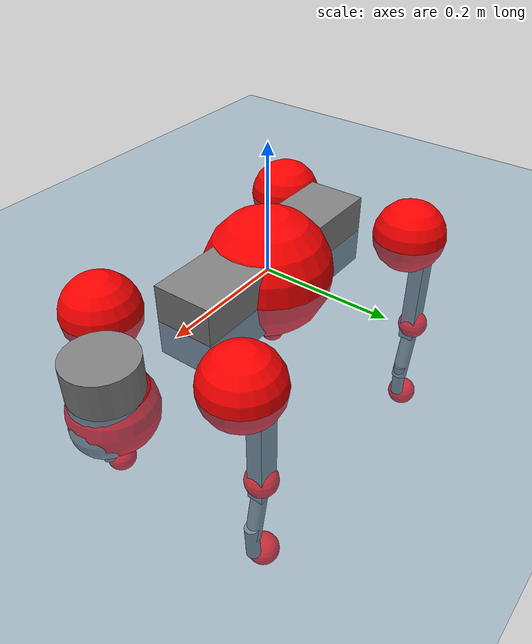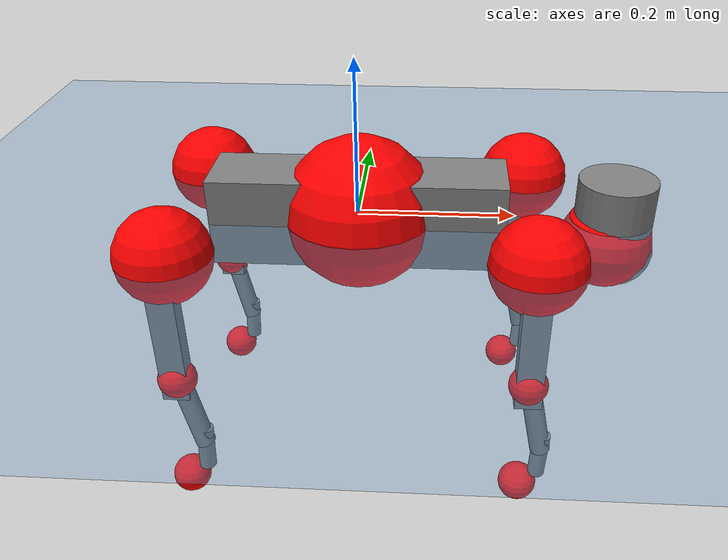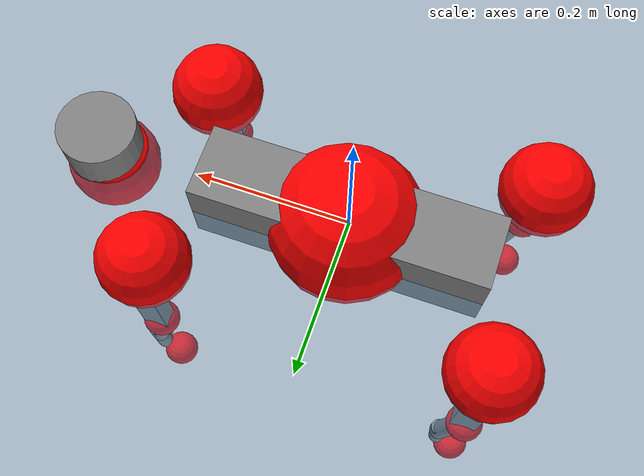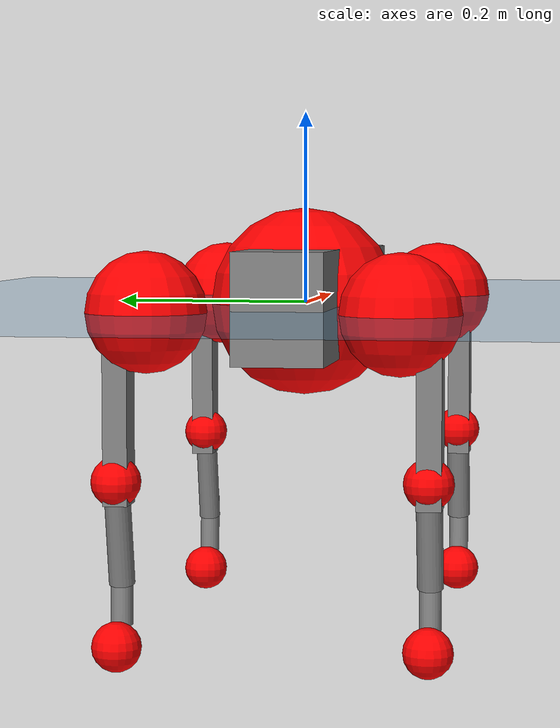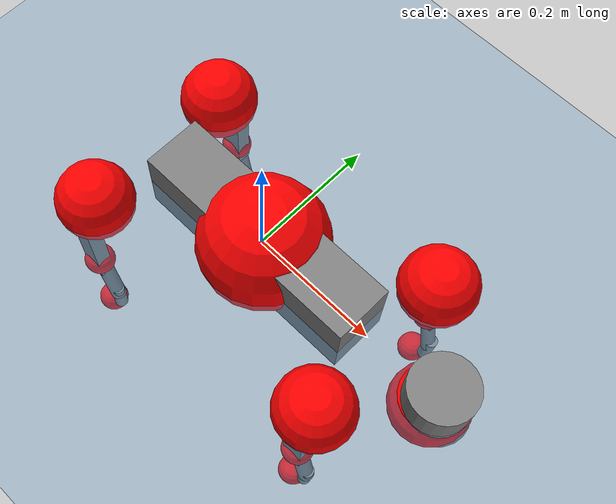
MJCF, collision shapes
<mujoco model="go2">
  <compiler angle="radian" assetdir="assets" balanceinertia="true" inertiafromgeom="false"/>

  <option timestep="0.005" density="1.2" viscosity="2e-05"/>

  <size nkey="1"/>

  <visual>
    <quality shadowsize="8192"/>
    <map shadowclip="0.5"/>
  </visual>

  <default>
    <default class="/">
      <geom contype="0" conaffinity="0" group="1" solref="-1000 -80"/>
      <site size="0.01 0.005 0.005" group="5"/>
      <general forcelimited="true" biastype="affine" gainprm="20" biasprm="0 -20 -0.5"/>
      <default class="go2">
        <joint armature="0.01" damping="0.01" frictionloss="0.2"/>
        <geom condim="1" margin="0.001"/>
        <default class="visual">
          <geom type="mesh" group="2"/>
        </default>
        <default class="collision">
          <geom group="3"/>
          <default class="foot">
            <geom size="0.022 0 0" condim="6" priority="1" friction="0.8 0.02 0.01" solimp="0.015 1 0.022"/>
          </default>
        </default>
        <default class="reward_collision_sphere">
          <geom group="5" rgba="1 0 0 1"/>
        </default>
      </default>
    </default>
  </default>

  <asset>
    <texture type="skybox" colorspace="auto" name="//unnamed_texture_0" builtin="gradient" rgb1="0.95 0.95 0.95" rgb2="0.95 0.95 0.95" width="100" height="600"/>
    <texture type="2d" colorspace="auto" name="texplane" builtin="checker" rgb1="0.345 0.575 0.748" rgb2="0.345 0.575 0.748" markrgb="1 1 1" width="512" height="512"/>
    <material name="MatPlane" class="/" texture="texplane" texuniform="true" texrepeat="2 2" specular="0.9"/>
    <material name="metal" class="/" rgba="0.9 0.95 0.95 1"/>
    <material name="black" class="/" rgba="0 0 0 1"/>
    <material name="white" class="/"/>
    <material name="gray" class="/" rgba="0.671705 0.692426 0.77427 1"/>
    <mesh name="base_0" class="/" file="base_0.obj"/>
    <mesh name="base_1" class="/" file="base_1.obj"/>
    <mesh name="base_2" class="/" file="base_2.obj"/>
    <mesh name="base_3" class="/" file="base_3.obj"/>
    <mesh name="base_4" class="/" file="base_4.obj"/>
    <mesh name="hip_0" class="/" file="hip_0.obj"/>
    <mesh name="hip_1" class="/" file="hip_1.obj"/>
    <mesh name="thigh_0" class="/" file="thigh_0.obj"/>
    <mesh name="thigh_1" class="/" file="thigh_1.obj"/>
    <mesh name="thigh_mirror_0" class="/" file="thigh_mirror_0.obj"/>
    <mesh name="thigh_mirror_1" class="/" file="thigh_mirror_1.obj"/>
    <mesh name="calf_0" class="/" file="calf_0.obj"/>
    <mesh name="calf_1" class="/" file="calf_1.obj"/>
    <mesh name="calf_mirror_0" class="/" file="calf_mirror_0.obj"/>
    <mesh name="calf_mirror_1" class="/" file="calf_mirror_1.obj"/>
    <mesh name="foot" class="/" file="foot.obj"/>
  </asset>

  <worldbody>
    <geom name="floor" class="/" size="100 100 0.125" type="plane" group="0" material="MatPlane"/>
    <light name="toplight_shadow" class="/" pos="0 0 5" dir="0.0990148 0.0990148 -0.990148" type="directional" ambient="0.04 0.04 0.04" diffuse="0.55 0.55 0.55" specular="0.12 0.12 0.12"/>
    <light name="toplight_fill" class="/" pos="0 0 5" dir="0.0990148 0.0990148 -0.990148" type="directional" castshadow="false" ambient="0.04 0.04 0.04" diffuse="0.3 0.3 0.3" specular="0.08 0.08 0.08"/>
    <body name="trunk" childclass="go2" pos="0.00223179 0.00168597 0.000942231" quat="1 7.497e-05 1.31517e-05 -1.85159e-06">
      <inertial pos="0.023908 0.000535089 -0.00410431" quat="-0.00888287 0.718233 -0.00843201 0.695695" mass="6.78145" diaginertia="0.212568 0.146092 0.0062969"/>
      <joint name="//unnamed_joint_0" type="free" armature="0" damping="0" frictionloss="0"/>
      <geom name="//unnamed_geom_1" class="visual" material="black" mesh="base_0"/>
      <geom name="//unnamed_geom_2" class="visual" material="black" mesh="base_1"/>
      <geom name="//unnamed_geom_3" class="visual" material="black" mesh="base_2"/>
      <geom name="//unnamed_geom_4" class="visual" material="white" mesh="base_3"/>
      <geom name="//unnamed_geom_5" class="visual" material="gray" mesh="base_4"/>
      <geom name="trunk_1" class="collision" size="0.18599 0.0462257 0.0563607" type="box"/>
      <geom name="trunk_2" class="collision" size="0.0494392 0.0444953" pos="0.323064 0 0.00762995" type="cylinder"/>
      <geom name="trunk_3" class="collision" size="0.0464728" pos="0.332132 0 -0.0457797"/>
      <geom name="//unnamed_geom_9" class="reward_collision_sphere" size="0.0988784"/>
      <geom name="//unnamed_geom_10" class="reward_collision_sphere" size="0.059327" pos="0.317396 0 -0.0343348"/>
      <site name="imu" pos="-0.0263762 0.00458276 0.024473" size="0.00988784"/>
      <camera name="track" pos="0 -2.1396 0" quat="0.707107 0.707107 0 0" mode="trackcom"/>
      <camera name="ego_camera" pos="0.35367 0 0.0343348" quat="-0.5 -0.5 0.5 0.5"/>
      <body name="FL_hip" pos="0.217991 0.0495273 -0.00196886" quat="0.999999 0.000354698 0.000651214 -0.000806413">
        <inertial pos="-0.00805451 0.000591898 -0.000355445" quat="0.496122 0.501289 0.50488 0.497663" mass="0.65978" diaginertia="0.00166754 0.000809508 0.000126269"/>
        <joint name="FL_hip_joint" pos="0 0 0" axis="0.999997 0.0022338 0.00128138" range="-1.03003 1.04894" armature="0.00915412" damping="0.0104418" frictionloss="0.221075"/>
        <geom name="//unnamed_geom_11" class="visual" material="metal" mesh="hip_0"/>
        <geom name="//unnamed_geom_12" class="visual" material="gray" mesh="hip_1"/>
        <geom name="//unnamed_geom_13" class="collision" size="0.0454841 0.0197757" pos="0 0.0855839 0" quat="0.707107 0.707107 0 0" type="cylinder"/>
        <geom name="//unnamed_geom_14" class="reward_collision_sphere" size="0.059327" pos="0 0.0748859 0"/>
        <body name="FL_thigh" pos="-0.00330656 0.101366 -0.0016533" quat="0.999999 -0.000609219 -0.000559258 -0.000916899">
          <inertial pos="-0.0035492 -0.0237211 -0.026186" quat="0.828736 0.0922199 -0.0117558 0.551864" mass="1.0874" diaginertia="0.0109439 0.00807254 0.000224068"/>
          <joint name="FL_thigh_joint" pos="0 0 0" axis="-0.00702221 0.999826 0.0173035" range="-1.53215 3.49191" armature="0.0112762" damping="0" frictionloss="0.171293"/>
          <geom name="//unnamed_geom_15" class="visual" material="metal" mesh="thigh_0"/>
          <geom name="//unnamed_geom_16" class="visual" material="gray" mesh="thigh_1"/>
          <geom name="//unnamed_geom_17" class="collision" size="0.105305 0.0121126 0.0168093" pos="0 0 -0.081259" quat="0.707107 0 0.707107 0" type="box"/>
          <body name="FL_calf" pos="-0.000917165 -0.0013982 -0.161505" quat="0.999999 0.000505415 0.00129216 -0.000340515">
            <inertial pos="0.00950514 -0.000342582 -0.106565" quat="0.716488 0.00174566 -0.000240335 0.697598" mass="0.249672" diaginertia="0.00278487 0.00213327 1.37669e-05"/>
            <joint name="FL_calf_joint" pos="0 0 0" axis="0.00138491 0.999999 0.00092393" stiffness="0.00281734" range="-2.72235 -0.822894" armature="0.0102777" damping="0" frictionloss="0.187472"/>
            <geom name="//unnamed_geom_18" class="visual" material="gray" mesh="calf_0"/>
            <geom name="//unnamed_geom_19" class="visual" material="black" mesh="calf_1"/>
            <geom name="FL_calf0" class="collision" size="0.0118654 0.059327" pos="0.00906846 0 -0.0457797" quat="0.994493 0 -0.104807 0" type="cylinder"/>
            <geom name="//unnamed_geom_21" class="collision" size="0.0108766 0.0321355" pos="0.0226712 0 -0.112923" quat="0.999688 0 0.0249974 0" type="cylinder"/>
            <geom name="//unnamed_geom_22" class="visual" pos="0 0 -0.162518" quat="1 0 0 0" material="black" mesh="foot"/>
            <geom name="FL_foot" class="foot" size="0.0217308" pos="-0.00226712 0 -0.162518"/>
            <geom name="//unnamed_geom_24" class="reward_collision_sphere" size="0.0247196"/>
            <geom name="//unnamed_geom_25" class="reward_collision_sphere" size="0.0247196" pos="-0.00226712 0 -0.162518"/>
            <site name="FL_foot" class="foot" pos="-0.00226712 0 -0.162518" size="0.00988784"/>
          </body>
        </body>
      </body>
      <body name="FR_hip" pos="0.218126 -0.0484764 -0.00147757" quat="1 3.53794e-05 -0.000398639 -7.86239e-05">
        <inertial pos="-0.00472564 -0.00125636 -0.00127499" quat="0.496445 0.503607 0.491537 0.508245" mass="0.662094" diaginertia="0.00170666 0.000822708 0.000126468"/>
        <joint name="FR_hip_joint" pos="0 0 0" axis="0.999939 -0.00528155 0.00971558" range="-1.08741 1.02725" armature="0.00991999" damping="0.0162036" frictionloss="0.172604"/>
        <geom name="//unnamed_geom_26" class="visual" pos="0 2.67275e-09 1.1464e-07" quat="4.63268e-05 1 0 0" material="metal" mesh="hip_0"/>
        <geom name="//unnamed_geom_27" class="visual" pos="0 4.33285e-09 -2.83548e-07" quat="4.63268e-05 1 0 0" material="gray" mesh="hip_1"/>
        <geom name="//unnamed_geom_28" class="collision" size="0.0454841 0.0197757" pos="0 -0.0855839 0" quat="0.707107 0.707107 0 0" type="cylinder"/>
        <geom name="//unnamed_geom_29" class="reward_collision_sphere" size="0.059327" pos="0 -0.0748859 0"/>
        <body name="FR_thigh" pos="-0.000214133 -0.100863 0.00348775" quat="1 3.65717e-05 6.57575e-05 -3.15139e-05">
          <inertial pos="-0.00643796 0.0247231 -0.0241982" quat="0.551485 -0.0208184 0.0859068 0.829488" mass="1.12924" diaginertia="0.0112751 0.00822673 0.000229979"/>
          <joint name="FR_thigh_joint" pos="0 0 0" axis="-0.0134771 -0.999909 -0.000740614" stiffness="0.00596388" range="-3.47288 1.61797" armature="0.00956977" damping="0.00528107" frictionloss="0.194035"/>
          <geom name="//unnamed_geom_30" class="visual" material="metal" mesh="thigh_mirror_0"/>
          <geom name="//unnamed_geom_31" class="visual" material="gray" mesh="thigh_mirror_1"/>
          <geom name="//unnamed_geom_32" class="collision" size="0.105305 0.0121126 0.0168093" pos="0 0 -0.081259" quat="0.707107 0 0.707107 0" type="box"/>
          <body name="FR_calf" pos="-0.000146331 0.00164238 -0.159496" quat="1 -0.000154281 -0.000606065 0.000199551">
            <inertial pos="0.0077763 -0.00204246 -0.105499" quat="0.705063 -0.0033252 0.000374329 0.709136" mass="0.228218" diaginertia="0.00290332 0.00213441 1.41159e-05"/>
            <joint name="FR_calf_joint" pos="0 0 0" axis="0.0117939 -0.999903 -0.00739764" stiffness="0.00788979" range="0.802572 2.73597" armature="0.00940759" damping="0.0182428" frictionloss="0.220876"/>
            <geom name="//unnamed_geom_33" class="visual" material="gray" mesh="calf_mirror_0"/>
            <geom name="//unnamed_geom_34" class="visual" material="black" mesh="calf_mirror_1"/>
            <geom name="FR_calf0" class="collision" size="0.0128542 0.059327" pos="0.0113356 0 -0.0457797" quat="0.995004 0 -0.0998334 0" type="cylinder"/>
            <geom name="//unnamed_geom_36" class="collision" size="0.0108766 0.0321355" pos="0.0226712 0 -0.112923" quat="0.999688 0 0.0249974 0" type="cylinder"/>
            <geom name="//unnamed_geom_37" class="visual" pos="0 0 -0.162518" quat="1 0 0 0" material="black" mesh="foot"/>
            <geom name="FR_foot" class="foot" size="0.0202999" pos="-0.00226712 0 -0.162518"/>
            <geom name="//unnamed_geom_39" class="reward_collision_sphere" size="0.0247196"/>
            <geom name="//unnamed_geom_40" class="reward_collision_sphere" size="0.0247196" pos="-0.00226712 0 -0.162518"/>
            <site name="FR_foot" class="foot" pos="-0.00226712 0 -0.162518" size="0.00988784"/>
          </body>
        </body>
      </body>
      <body name="RL_hip" pos="-0.218964 0.0469345 -0.00117873" quat="1 4.00689e-05 -0.000323135 0.00023939">
        <inertial pos="0.00789864 0.00115586 0.000625033" quat="0.509495 0.504668 0.487995 0.49758" mass="0.632695" diaginertia="0.00163593 0.000827508 0.00011961"/>
        <joint name="RL_hip_joint" pos="0 0 0" axis="-0.999927 -0.00519128 0.0108671" stiffness="0.00268726" range="-0.990935 1.07568" armature="0.00978798" damping="0.0193275" frictionloss="0.185124"/>
        <geom name="//unnamed_geom_41" class="visual" pos="-3.22819e-09 0 -6.328e-07" quat="4.63268e-05 0 1 0" material="metal" mesh="hip_0"/>
        <geom name="//unnamed_geom_42" class="visual" pos="-5.23329e-09 0 -5.61203e-07" quat="4.63268e-05 0 1 0" material="gray" mesh="hip_1"/>
        <geom name="//unnamed_geom_43" class="collision" size="0.0454841 0.0197757" pos="0 0.0855839 0" quat="0.707107 0.707107 0 0" type="cylinder"/>
        <geom name="//unnamed_geom_44" class="reward_collision_sphere" size="0.059327" pos="0 0.0748859 0"/>
        <body name="RL_thigh" pos="0.00270559 0.103697 -0.0013621" quat="1 0.000368956 -0.000169468 0.000713519">
          <inertial pos="-0.00431099 -0.0222497 -0.0257138" quat="0.830121 0.0835406 -0.00641047 0.551253" mass="1.15027" diaginertia="0.0111197 0.00838631 0.000232048"/>
          <joint name="RL_thigh_joint" pos="0 0 0" axis="-0.000954171 0.999963 0.00857381" range="-0.466637 4.59566" armature="0.0108068" damping="0.0063063" frictionloss="0.222615"/>
          <geom name="//unnamed_geom_45" class="visual" material="metal" mesh="thigh_0"/>
          <geom name="//unnamed_geom_46" class="visual" material="gray" mesh="thigh_1"/>
          <geom name="//unnamed_geom_47" class="collision" size="0.105305 0.0121126 0.0168093" pos="0 0 -0.081259" quat="0.707107 0 0.707107 0" type="box"/>
          <body name="RL_calf" pos="-0.00271511 0.00209841 -0.164214" quat="1 -0.000310066 -1.81924e-05 -0.000376825">
            <inertial pos="0.00612072 -0.000225064 -0.107257" quat="0.713501 0.00669363 0.00663017 0.700591" mass="0.228784" diaginertia="0.00280998 0.00200883 1.38131e-05"/>
            <joint name="RL_calf_joint" pos="0 0 0" axis="-0.0136735 0.999744 0.0180197" range="-2.72235 -0.891129" armature="0.00992338" damping="0.00190332" frictionloss="0.170933"/>
            <geom name="//unnamed_geom_48" class="visual" material="gray" mesh="calf_0"/>
            <geom name="//unnamed_geom_49" class="visual" material="black" mesh="calf_1"/>
            <geom name="RL_calf0" class="collision" size="0.0128542 0.059327" pos="0.0113356 0 -0.0457797" quat="0.995004 0 -0.0998334 0" type="cylinder"/>
            <geom name="//unnamed_geom_51" class="collision" size="0.0108766 0.0321355" pos="0.0226712 0 -0.112923" quat="0.999688 0 0.0249974 0" type="cylinder"/>
            <geom name="//unnamed_geom_52" class="visual" pos="0 0 -0.162518" quat="1 0 0 0" material="black" mesh="foot"/>
            <geom name="RL_foot" class="foot" size="0.018014" pos="-0.00226712 0 -0.162518"/>
            <geom name="//unnamed_geom_54" class="reward_collision_sphere" size="0.0247196"/>
            <geom name="//unnamed_geom_55" class="reward_collision_sphere" size="0.0247196" pos="-0.00226712 0 -0.162518"/>
            <site name="RL_foot" class="foot" pos="-0.00226712 0 -0.162518" size="0.00988784"/>
          </body>
        </body>
      </body>
      <body name="RR_hip" pos="-0.220254 -0.0497149 -0.0015728" quat="1 0.000361855 -0.000564583 9.07361e-05">
        <inertial pos="0.00894849 0.000435737 0.000556565" quat="0.497134 0.491811 0.499456 0.511394" mass="0.660513" diaginertia="0.00172155 0.000870407 0.0001293"/>
        <joint name="RR_hip_joint" pos="0 0 0" axis="-0.999976 -0.00306316 -0.00620359" range="-1.05191 1.06769" armature="0.00920939" damping="0.0166911" frictionloss="0.199496"/>
        <geom name="//unnamed_geom_56" class="visual" pos="3.22598e-09 2.67275e-09 -7.4744e-07" quat="2.14617e-09 4.63268e-05 4.63268e-05 -1" material="metal" mesh="hip_0"/>
        <geom name="//unnamed_geom_57" class="visual" pos="5.23874e-09 4.33285e-09 -2.77655e-07" quat="2.14617e-09 4.63268e-05 4.63268e-05 -1" material="gray" mesh="hip_1"/>
        <geom name="//unnamed_geom_58" class="collision" size="0.0454841 0.0197757" pos="0 -0.0855839 0" quat="0.707107 0.707107 0 0" type="cylinder"/>
        <geom name="//unnamed_geom_59" class="reward_collision_sphere" size="0.059327" pos="0 -0.0748859 0"/>
        <body name="RR_thigh" pos="0.000663611 -0.103549 0.00104812" quat="0.999999 -0.000731079 0.000384608 0.000565356">
          <inertial pos="-0.00403155 0.0248277 -0.0241909" quat="0.555679 -0.0184927 0.0838973 0.826946" mass="1.11697" diaginertia="0.011266 0.00849273 0.000231141"/>
          <joint name="RR_thigh_joint" pos="0 0 0" axis="-0.0081088 -0.999883 -0.0129518" range="-4.52726 0.552054" armature="0.0110121" damping="0.00190964" frictionloss="0.17401"/>
          <geom name="//unnamed_geom_60" class="visual" material="metal" mesh="thigh_mirror_0"/>
          <geom name="//unnamed_geom_61" class="visual" material="gray" mesh="thigh_mirror_1"/>
          <geom name="//unnamed_geom_62" class="collision" size="0.105305 0.0121126 0.0168093" pos="0 0 -0.081259" quat="0.707107 0 0.707107 0" type="box"/>
          <body name="RR_calf" pos="0.0010226 0.00122316 -0.162436" quat="1 -0.000120501 2.38965e-06 -0.000110351">
            <inertial pos="0.00476847 -0.000647068 -0.106296" quat="0.70619 -0.00603012 0.00204404 0.707994" mass="0.243804" diaginertia="0.0027253 0.00214045 1.39138e-05"/>
            <joint name="RR_calf_joint" pos="0 0 0" axis="-0.00017835 -0.999995 -0.00300791" range="0.808432 2.75928" armature="0.00974402" damping="0.0151652" frictionloss="0.214183"/>
            <geom name="//unnamed_geom_63" class="visual" material="gray" mesh="calf_mirror_0"/>
            <geom name="//unnamed_geom_64" class="visual" material="black" mesh="calf_mirror_1"/>
            <geom name="RR_calf0" class="collision" size="0.0128542 0.059327" pos="0.0113356 0 -0.0457797" quat="0.995004 0 -0.0998334 0" type="cylinder"/>
            <geom name="//unnamed_geom_66" class="collision" size="0.0108766 0.0321355" pos="0.0226712 0 -0.112923" quat="0.999688 0 0.0249974 0" type="cylinder"/>
            <geom name="//unnamed_geom_67" class="visual" pos="0 0 -0.162518" quat="1 0 0 0" material="black" mesh="foot"/>
            <geom name="RR_foot" class="foot" size="0.022473" pos="-0.00226712 0 -0.162518"/>
            <geom name="//unnamed_geom_69" class="reward_collision_sphere" size="0.0247196"/>
            <geom name="//unnamed_geom_70" class="reward_collision_sphere" size="0.0247196" pos="-0.00226712 0 -0.162518"/>
            <site name="RR_foot" class="foot" pos="-0.00226712 0 -0.162518" size="0.00988784"/>
          </body>
        </body>
      </body>
    </body>
  </worldbody>

  <contact>
    <pair class="/" geom1="floor" geom2="FL_foot" name="//unnamed_contact_0"/>
    <pair class="/" geom1="floor" geom2="FR_foot" name="//unnamed_contact_1"/>
    <pair class="/" geom1="floor" geom2="RL_foot" name="//unnamed_contact_2"/>
    <pair class="/" geom1="floor" geom2="RR_foot" name="//unnamed_contact_3"/>
  </contact>

  <actuator>
    <general name="FL_hip" class="/" joint="FL_hip_joint" forcerange="-23.2795 23.2795" gainprm="19.9412" biasprm="0 -19.9412 -0.503338"/>
    <general name="FL_thigh" class="/" joint="FL_thigh_joint" forcerange="-21.2504 21.2504" gainprm="19.9412" biasprm="0 -19.9412 -0.503338"/>
    <general name="FL_calf" class="/" joint="FL_calf_joint" forcerange="-48.7228 48.7228" gainprm="19.9412" biasprm="0 -19.9412 -0.503338"/>
    <general name="FR_hip" class="/" joint="FR_hip_joint" forcerange="-23.4685 23.4685" gainprm="19.9412" biasprm="0 -19.9412 -0.503338"/>
    <general name="FR_thigh" class="/" joint="FR_thigh_joint" forcerange="-22.5172 22.5172" gainprm="19.9412" biasprm="0 -19.9412 -0.503338"/>
    <general name="FR_calf" class="/" joint="FR_calf_joint" forcerange="-49.2505 49.2505" gainprm="19.9412" biasprm="0 -19.9412 -0.503338"/>
    <general name="RL_hip" class="/" joint="RL_hip_joint" forcerange="-23.6215 23.6215" gainprm="19.9412" biasprm="0 -19.9412 -0.503338"/>
    <general name="RL_thigh" class="/" joint="RL_thigh_joint" forcerange="-25.9128 25.9128" gainprm="19.9412" biasprm="0 -19.9412 -0.503338"/>
    <general name="RL_calf" class="/" joint="RL_calf_joint" forcerange="-40.8028 40.8028" gainprm="19.9412" biasprm="0 -19.9412 -0.503338"/>
    <general name="RR_hip" class="/" joint="RR_hip_joint" forcerange="-24.1469 24.1469" gainprm="19.9412" biasprm="0 -19.9412 -0.503338"/>
    <general name="RR_thigh" class="/" joint="RR_thigh_joint" forcerange="-24.1608 24.1608" gainprm="19.9412" biasprm="0 -19.9412 -0.503338"/>
    <general name="RR_calf" class="/" joint="RR_calf_joint" forcerange="-43.264 43.264" gainprm="19.9412" biasprm="0 -19.9412 -0.503338"/>
  </actuator>

  <sensor>
    <gyro site="imu" name="imu_angular_velocity"/>
    <velocimeter site="imu" name="imu_linear_velocity"/>
    <framelinvel objtype="site" objname="FL_foot" name="FL_foot_global_linear_velocity"/>
    <framelinvel objtype="site" objname="FR_foot" name="FR_foot_global_linear_velocity"/>
    <framelinvel objtype="site" objname="RL_foot" name="RL_foot_global_linear_velocity"/>
    <framelinvel objtype="site" objname="RR_foot" name="RR_foot_global_linear_velocity"/>
  </sensor>

  <keyframe>
    <key name="home" qpos="0 0 0.325 1 0 0 0 0.1 0.8 -1.5 -0.1 -0.8 1.5 -0.1 0.8 -1.5 0.1 -0.8 1.5"/>
  </keyframe>
</mujoco>
